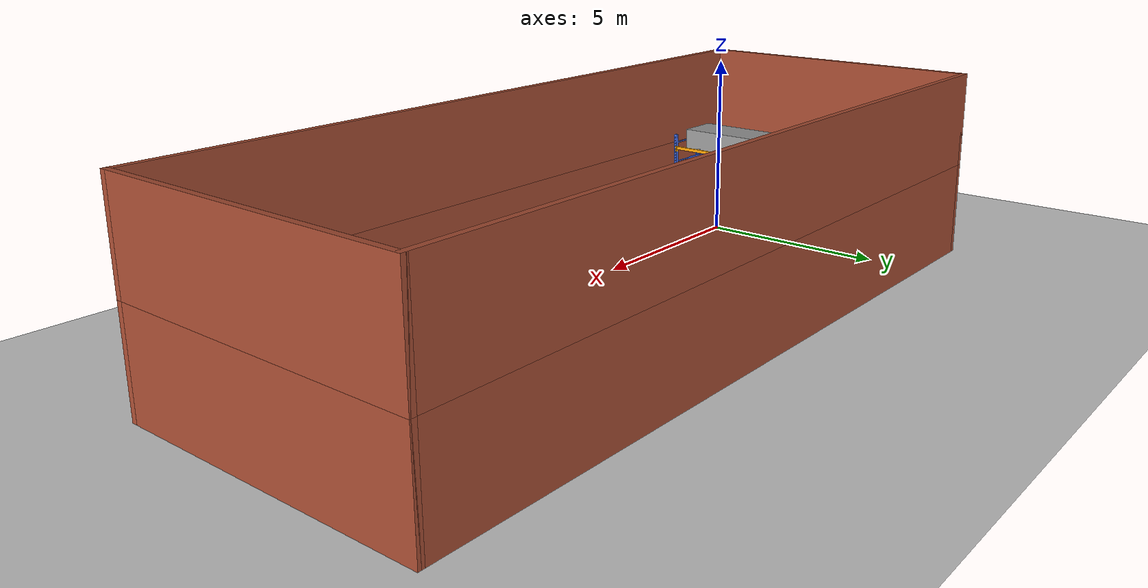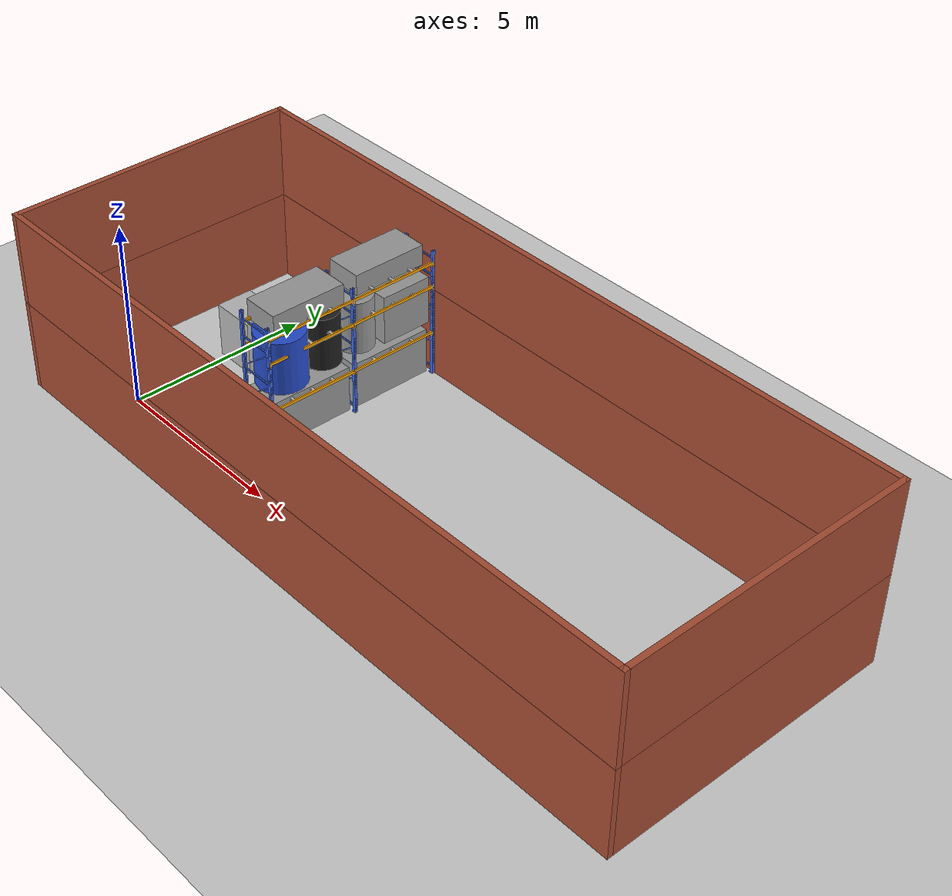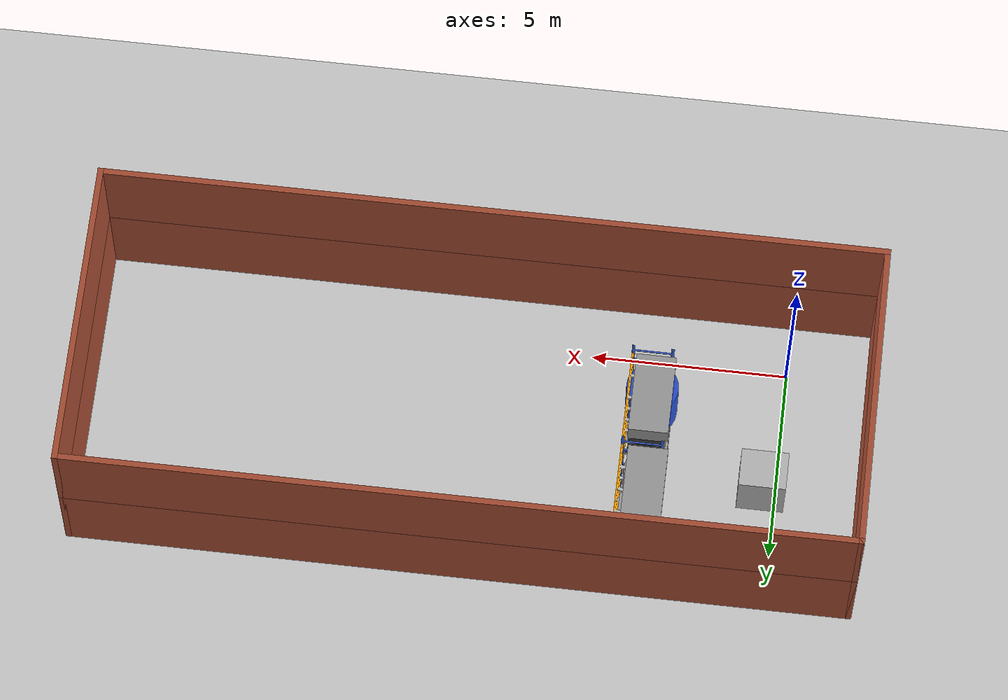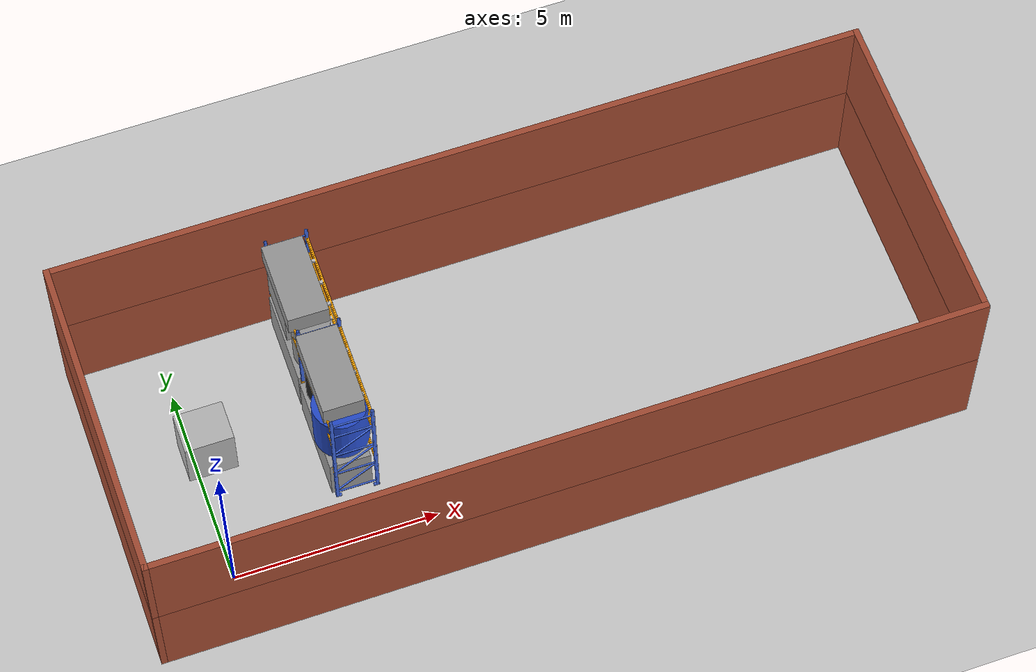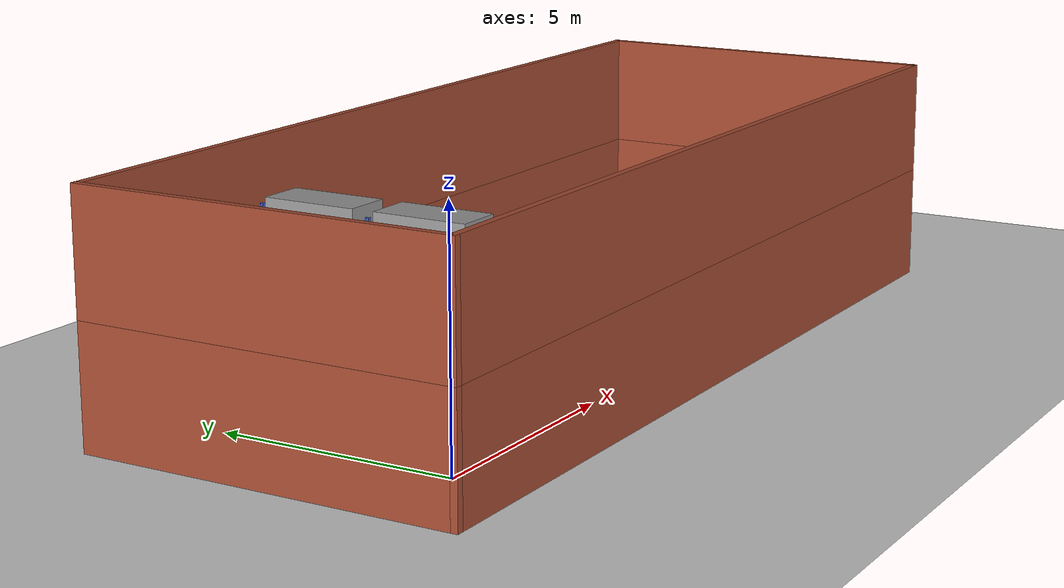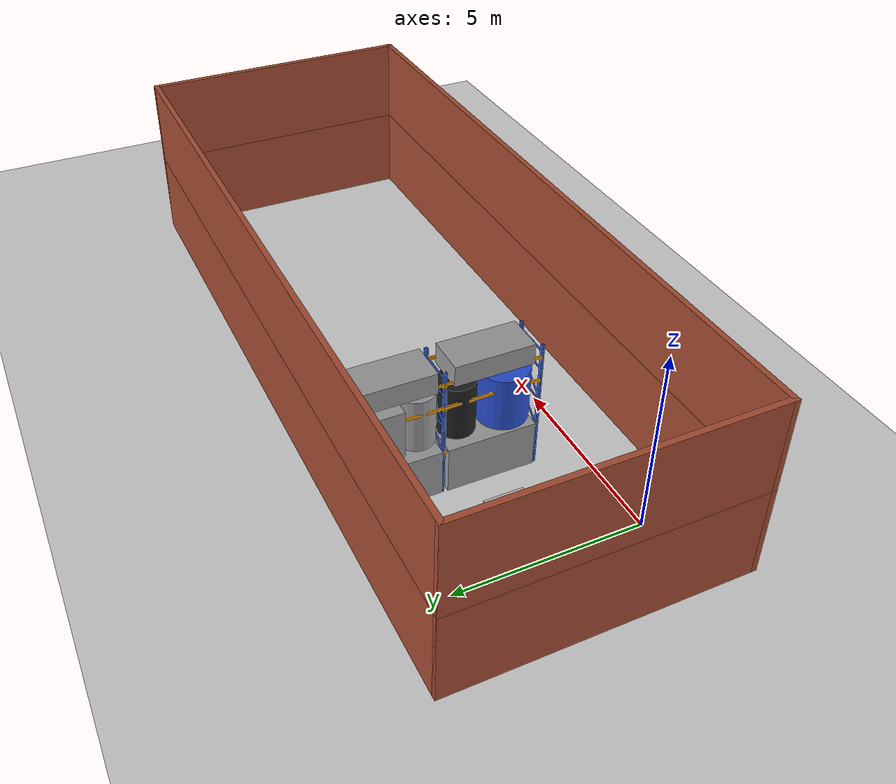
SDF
<sdf version="1.6">
 <world name="default">
  <model name="ground_plane">
   <static>1</static>
   <link name="link">
    <collision name="collision">
     <geometry><plane><normal>0 0 1</normal><size>100 100</size></plane></geometry>
     <surface><friction><ode><mu>100</mu><mu2>50</mu2></ode></friction></surface>
    </collision>
    <visual name="visual">
     <cast_shadows>0</cast_shadows>
     <geometry><plane><normal>0 0 1</normal><size>100 100</size></plane></geometry>
     <material>
      <script><uri>file://media/materials/scripts/gazebo.material</uri><name>Gazebo/Grey</name></script>
     </material>
    </visual>
   </link>
  </model>
  <model name="WarehouseSmall_1">
   <link name="Wall_0">
    <pose>0 3.925 0 0 -0 0</pose>
    <visual name="Wall_0_Visual">
     <pose>0 0 1.25 0 -0 0</pose>
     <geometry><box><size>20 0.15 2.5</size></box></geometry>
     <material>
      <script><uri>file://media/materials/scripts/gazebo.material</uri><name>Gazebo/Bricks</name></script>
      <ambient>1 1 1 1</ambient>
      <diffuse>1 1 1 1</diffuse>
      <specular>0.2 0.2 0.2 1</specular>
      <emissive>0 0 0 1</emissive>
     </material>
    </visual>
    <collision name="Wall_0_Collision">
     <pose>0 0 1.25 0 -0 0</pose>
     <geometry><box><size>20 0.15 2.5</size></box></geometry>
     <surface>
      <friction>
       <ode><mu>1</mu><mu2>1</mu2><fdir1>0 0 0</fdir1><slip1>0</slip1><slip2>0</slip2></ode>
       <torsional>
        <coefficient>1</coefficient>
        <patch_radius>0</patch_radius>
        <surface_radius>0</surface_radius>
        <use_patch_radius>1</use_patch_radius>
        <ode><slip>0</slip></ode>
       </torsional>
      </friction>
      <bounce><restitution_coefficient>0</restitution_coefficient><threshold>1e+06</threshold></bounce>
      <contact>
       <collide_without_contact>0</collide_without_contact>
       <collide_without_contact_bitmask>1</collide_without_contact_bitmask>
       <collide_bitmask>1</collide_bitmask>
       <ode>
        <soft_cfm>0</soft_cfm>
        <soft_erp>0.2</soft_erp>
        <kp>1e+13</kp>
        <kd>1</kd>
        <max_vel>0.01</max_vel>
        <min_depth>0</min_depth>
       </ode>
       <bullet>
        <split_impulse>1</split_impulse>
        <split_impulse_penetration_threshold>-0.01</split_impulse_penetration_threshold>
        <soft_cfm>0</soft_cfm>
        <soft_erp>0.2</soft_erp>
        <kp>1e+13</kp>
        <kd>1</kd>
       </bullet>
      </contact>
     </surface>
    </collision>
   </link>
   <link name="Wall_1">
    <pose>9.925 0 0 0 0 -1.5708</pose>
    <visual name="Wall_1_Visual">
     <pose>0 0 1.25 0 -0 0</pose>
     <geometry><box><size>8 0.15 2.5</size></box></geometry>
     <material>
      <script><uri>file://media/materials/scripts/gazebo.material</uri><name>Gazebo/Bricks</name></script>
      <ambient>1 1 1 1</ambient>
      <diffuse>1 1 1 1</diffuse>
      <specular>0.2 0.2 0.2 1</specular>
      <emissive>0 0 0 1</emissive>
     </material>
    </visual>
    <collision name="Wall_1_Collision">
     <pose>0 0 1.25 0 -0 0</pose>
     <geometry><box><size>8 0.15 2.5</size></box></geometry>
     <surface>
      <friction>
       <ode><mu>1</mu><mu2>1</mu2><fdir1>0 0 0</fdir1><slip1>0</slip1><slip2>0</slip2></ode>
       <torsional>
        <coefficient>1</coefficient>
        <patch_radius>0</patch_radius>
        <surface_radius>0</surface_radius>
        <use_patch_radius>1</use_patch_radius>
        <ode><slip>0</slip></ode>
       </torsional>
      </friction>
      <bounce><restitution_coefficient>0</restitution_coefficient><threshold>1e+06</threshold></bounce>
      <contact>
       <collide_without_contact>0</collide_without_contact>
       <collide_without_contact_bitmask>1</collide_without_contact_bitmask>
       <collide_bitmask>1</collide_bitmask>
       <ode>
        <soft_cfm>0</soft_cfm>
        <soft_erp>0.2</soft_erp>
        <kp>1e+13</kp>
        <kd>1</kd>
        <max_vel>0.01</max_vel>
        <min_depth>0</min_depth>
       </ode>
       <bullet>
        <split_impulse>1</split_impulse>
        <split_impulse_penetration_threshold>-0.01</split_impulse_penetration_threshold>
        <soft_cfm>0</soft_cfm>
        <soft_erp>0.2</soft_erp>
        <kp>1e+13</kp>
        <kd>1</kd>
       </bullet>
      </contact>
     </surface>
    </collision>
   </link>
   <link name="Wall_2">
    <pose>0 -3.925 0 0 -0 3.14159</pose>
    <visual name="Wall_2_Visual">
     <pose>0 0 1.25 0 -0 0</pose>
     <geometry><box><size>20 0.15 2.5</size></box></geometry>
     <material>
      <script><uri>file://media/materials/scripts/gazebo.material</uri><name>Gazebo/Bricks</name></script>
      <ambient>1 1 1 1</ambient>
      <diffuse>1 1 1 1</diffuse>
      <specular>0.2 0.2 0.2 1</specular>
      <emissive>0 0 0 1</emissive>
     </material>
    </visual>
    <collision name="Wall_2_Collision">
     <pose>0 0 1.25 0 -0 0</pose>
     <geometry><box><size>20 0.15 2.5</size></box></geometry>
     <surface>
      <friction>
       <ode><mu>1</mu><mu2>1</mu2><fdir1>0 0 0</fdir1><slip1>0</slip1><slip2>0</slip2></ode>
       <torsional>
        <coefficient>1</coefficient>
        <patch_radius>0</patch_radius>
        <surface_radius>0</surface_radius>
        <use_patch_radius>1</use_patch_radius>
        <ode><slip>0</slip></ode>
       </torsional>
      </friction>
      <bounce><restitution_coefficient>0</restitution_coefficient><threshold>1e+06</threshold></bounce>
      <contact>
       <collide_without_contact>0</collide_without_contact>
       <collide_without_contact_bitmask>1</collide_without_contact_bitmask>
       <collide_bitmask>1</collide_bitmask>
       <ode>
        <soft_cfm>0</soft_cfm>
        <soft_erp>0.2</soft_erp>
        <kp>1e+13</kp>
        <kd>1</kd>
        <max_vel>0.01</max_vel>
        <min_depth>0</min_depth>
       </ode>
       <bullet>
        <split_impulse>1</split_impulse>
        <split_impulse_penetration_threshold>-0.01</split_impulse_penetration_threshold>
        <soft_cfm>0</soft_cfm>
        <soft_erp>0.2</soft_erp>
        <kp>1e+13</kp>
        <kd>1</kd>
       </bullet>
      </contact>
     </surface>
    </collision>
   </link>
   <link name="Wall_3">
    <pose>-9.925 0 0 0 -0 1.5708</pose>
    <visual name="Wall_3_Visual">
     <pose>0 0 1.25 0 -0 0</pose>
     <geometry><box><size>8 0.15 2.5</size></box></geometry>
     <material>
      <script><uri>file://media/materials/scripts/gazebo.material</uri><name>Gazebo/Bricks</name></script>
      <ambient>1 1 1 1</ambient>
      <diffuse>1 1 1 1</diffuse>
      <specular>0.2 0.2 0.2 1</specular>
      <emissive>0 0 0 1</emissive>
     </material>
    </visual>
    <collision name="Wall_3_Collision">
     <pose>0 0 1.25 0 -0 0</pose>
     <geometry><box><size>8 0.15 2.5</size></box></geometry>
     <surface>
      <friction>
       <ode><mu>1</mu><mu2>1</mu2><fdir1>0 0 0</fdir1><slip1>0</slip1><slip2>0</slip2></ode>
       <torsional>
        <coefficient>1</coefficient>
        <patch_radius>0</patch_radius>
        <surface_radius>0</surface_radius>
        <use_patch_radius>1</use_patch_radius>
        <ode><slip>0</slip></ode>
       </torsional>
      </friction>
      <bounce><restitution_coefficient>0</restitution_coefficient><threshold>1e+06</threshold></bounce>
      <contact>
       <collide_without_contact>0</collide_without_contact>
       <collide_without_contact_bitmask>1</collide_without_contact_bitmask>
       <collide_bitmask>1</collide_bitmask>
       <ode>
        <soft_cfm>0</soft_cfm>
        <soft_erp>0.2</soft_erp>
        <kp>1e+13</kp>
        <kd>1</kd>
        <max_vel>0.01</max_vel>
        <min_depth>0</min_depth>
       </ode>
       <bullet>
        <split_impulse>1</split_impulse>
        <split_impulse_penetration_threshold>-0.01</split_impulse_penetration_threshold>
        <soft_cfm>0</soft_cfm>
        <soft_erp>0.2</soft_erp>
        <kp>1e+13</kp>
        <kd>1</kd>
       </bullet>
      </contact>
     </surface>
    </collision>
   </link>
   <link name="Wall_5">
    <pose>0 3.925 2.5 0 -0 0</pose>
    <visual name="Wall_5_Visual">
     <pose>0 0 1.25 0 -0 0</pose>
     <geometry><box><size>20 0.15 2.5</size></box></geometry>
     <material>
      <script><uri>file://media/materials/scripts/gazebo.material</uri><name>Gazebo/Bricks</name></script>
      <ambient>1 1 1 1</ambient>
      <diffuse>1 1 1 1</diffuse>
      <specular>0.2 0.2 0.2 1</specular>
      <emissive>0 0 0 1</emissive>
     </material>
    </visual>
    <collision name="Wall_5_Collision">
     <pose>0 0 1.25 0 -0 0</pose>
     <geometry><box><size>20 0.15 2.5</size></box></geometry>
     <surface>
      <friction>
       <ode><mu>1</mu><mu2>1</mu2><fdir1>0 0 0</fdir1><slip1>0</slip1><slip2>0</slip2></ode>
       <torsional>
        <coefficient>1</coefficient>
        <patch_radius>0</patch_radius>
        <surface_radius>0</surface_radius>
        <use_patch_radius>1</use_patch_radius>
        <ode><slip>0</slip></ode>
       </torsional>
      </friction>
      <bounce><restitution_coefficient>0</restitution_coefficient><threshold>1e+06</threshold></bounce>
      <contact>
       <collide_without_contact>0</collide_without_contact>
       <collide_without_contact_bitmask>1</collide_without_contact_bitmask>
       <collide_bitmask>1</collide_bitmask>
       <ode>
        <soft_cfm>0</soft_cfm>
        <soft_erp>0.2</soft_erp>
        <kp>1e+13</kp>
        <kd>1</kd>
        <max_vel>0.01</max_vel>
        <min_depth>0</min_depth>
       </ode>
       <bullet>
        <split_impulse>1</split_impulse>
        <split_impulse_penetration_threshold>-0.01</split_impulse_penetration_threshold>
        <soft_cfm>0</soft_cfm>
        <soft_erp>0.2</soft_erp>
        <kp>1e+13</kp>
        <kd>1</kd>
       </bullet>
      </contact>
     </surface>
    </collision>
   </link>
   <link name="Wall_6">
    <pose>9.925 0 2.5 0 0 -1.5708</pose>
    <visual name="Wall_6_Visual">
     <pose>0 0 1.25 0 -0 0</pose>
     <geometry><box><size>8 0.15 2.5</size></box></geometry>
     <material>
      <script><uri>file://media/materials/scripts/gazebo.material</uri><name>Gazebo/Bricks</name></script>
      <ambient>1 1 1 1</ambient>
      <diffuse>1 1 1 1</diffuse>
      <specular>0.2 0.2 0.2 1</specular>
      <emissive>0 0 0 1</emissive>
     </material>
    </visual>
    <collision name="Wall_6_Collision">
     <pose>0 0 1.25 0 -0 0</pose>
     <geometry><box><size>8 0.15 2.5</size></box></geometry>
     <surface>
      <friction>
       <ode><mu>1</mu><mu2>1</mu2><fdir1>0 0 0</fdir1><slip1>0</slip1><slip2>0</slip2></ode>
       <torsional>
        <coefficient>1</coefficient>
        <patch_radius>0</patch_radius>
        <surface_radius>0</surface_radius>
        <use_patch_radius>1</use_patch_radius>
        <ode><slip>0</slip></ode>
       </torsional>
      </friction>
      <bounce><restitution_coefficient>0</restitution_coefficient><threshold>1e+06</threshold></bounce>
      <contact>
       <collide_without_contact>0</collide_without_contact>
       <collide_without_contact_bitmask>1</collide_without_contact_bitmask>
       <collide_bitmask>1</collide_bitmask>
       <ode>
        <soft_cfm>0</soft_cfm>
        <soft_erp>0.2</soft_erp>
        <kp>1e+13</kp>
        <kd>1</kd>
        <max_vel>0.01</max_vel>
        <min_depth>0</min_depth>
       </ode>
       <bullet>
        <split_impulse>1</split_impulse>
        <split_impulse_penetration_threshold>-0.01</split_impulse_penetration_threshold>
        <soft_cfm>0</soft_cfm>
        <soft_erp>0.2</soft_erp>
        <kp>1e+13</kp>
        <kd>1</kd>
       </bullet>
      </contact>
     </surface>
    </collision>
   </link>
   <link name="Wall_7">
    <pose>0 -3.925 2.5 0 -0 3.14159</pose>
    <visual name="Wall_7_Visual">
     <pose>0 0 1.25 0 -0 0</pose>
     <geometry><box><size>20 0.15 2.5</size></box></geometry>
     <material>
      <script><uri>file://media/materials/scripts/gazebo.material</uri><name>Gazebo/Bricks</name></script>
      <ambient>1 1 1 1</ambient>
      <diffuse>1 1 1 1</diffuse>
      <specular>0.2 0.2 0.2 1</specular>
      <emissive>0 0 0 1</emissive>
     </material>
    </visual>
    <collision name="Wall_7_Collision">
     <pose>0 0 1.25 0 -0 0</pose>
     <geometry><box><size>20 0.15 2.5</size></box></geometry>
     <surface>
      <friction>
       <ode><mu>1</mu><mu2>1</mu2><fdir1>0 0 0</fdir1><slip1>0</slip1><slip2>0</slip2></ode>
       <torsional>
        <coefficient>1</coefficient>
        <patch_radius>0</patch_radius>
        <surface_radius>0</surface_radius>
        <use_patch_radius>1</use_patch_radius>
        <ode><slip>0</slip></ode>
       </torsional>
      </friction>
      <bounce><restitution_coefficient>0</restitution_coefficient><threshold>1e+06</threshold></bounce>
      <contact>
       <collide_without_contact>0</collide_without_contact>
       <collide_without_contact_bitmask>1</collide_without_contact_bitmask>
       <collide_bitmask>1</collide_bitmask>
       <ode>
        <soft_cfm>0</soft_cfm>
        <soft_erp>0.2</soft_erp>
        <kp>1e+13</kp>
        <kd>1</kd>
        <max_vel>0.01</max_vel>
        <min_depth>0</min_depth>
       </ode>
       <bullet>
        <split_impulse>1</split_impulse>
        <split_impulse_penetration_threshold>-0.01</split_impulse_penetration_threshold>
        <soft_cfm>0</soft_cfm>
        <soft_erp>0.2</soft_erp>
        <kp>1e+13</kp>
        <kd>1</kd>
       </bullet>
      </contact>
     </surface>
    </collision>
   </link>
   <link name="Wall_8">
    <pose>-9.925 0 2.5 0 -0 1.5708</pose>
    <visual name="Wall_8_Visual">
     <pose>0 0 1.25 0 -0 0</pose>
     <geometry><box><size>8 0.15 2.5</size></box></geometry>
     <material>
      <script><uri>file://media/materials/scripts/gazebo.material</uri><name>Gazebo/Bricks</name></script>
      <ambient>1 1 1 1</ambient>
      <diffuse>1 1 1 1</diffuse>
      <specular>0.2 0.2 0.2 1</specular>
      <emissive>0 0 0 1</emissive>
     </material>
    </visual>
    <collision name="Wall_8_Collision">
     <pose>0 0 1.25 0 -0 0</pose>
     <geometry><box><size>8 0.15 2.5</size></box></geometry>
     <surface>
      <friction>
       <ode><mu>1</mu><mu2>1</mu2><fdir1>0 0 0</fdir1><slip1>0</slip1><slip2>0</slip2></ode>
       <torsional>
        <coefficient>1</coefficient>
        <patch_radius>0</patch_radius>
        <surface_radius>0</surface_radius>
        <use_patch_radius>1</use_patch_radius>
        <ode><slip>0</slip></ode>
       </torsional>
      </friction>
      <bounce><restitution_coefficient>0</restitution_coefficient><threshold>1e+06</threshold></bounce>
      <contact>
       <collide_without_contact>0</collide_without_contact>
       <collide_without_contact_bitmask>1</collide_without_contact_bitmask>
       <collide_bitmask>1</collide_bitmask>
       <ode>
        <soft_cfm>0</soft_cfm>
        <soft_erp>0.2</soft_erp>
        <kp>1e+13</kp>
        <kd>1</kd>
        <max_vel>0.01</max_vel>
        <min_depth>0</min_depth>
       </ode>
       <bullet>
        <split_impulse>1</split_impulse>
        <split_impulse_penetration_threshold>-0.01</split_impulse_penetration_threshold>
        <soft_cfm>0</soft_cfm>
        <soft_erp>0.2</soft_erp>
        <kp>1e+13</kp>
        <kd>1</kd>
       </bullet>
      </contact>
     </surface>
    </collision>
   </link>
   <static>1</static>
   <pose>7.78461 2.46373 0 0 -0 0</pose>
  </model>
  <model name="Full_shelf_1">
   <link name="link">
    <gravity>0</gravity>
    <inertial>
     <mass>1</mass>
     <inertia><ixx>1</ixx><ixy>0</ixy><ixz>0</ixz><iyy>1</iyy><iyz>0</iyz><izz>1</izz></inertia>
    </inertial>
    <visual name="visual">
     <geometry><mesh><uri>model://shelves_high/meshes/shelves_high.dae</uri><scale>1 1 1</scale></mesh></geometry>
     <material><shader type="vertex"><normal_map>__default__</normal_map></shader></material>
    </visual>
    <collision name="collision">
     <geometry>
      <mesh>
       <uri>/home/kosmastsk/.gazebo/models/shelves_high/meshes/shelves_high_collision.dae</uri>
       <scale>1 1 1</scale>
      </mesh>
     </geometry>
     <surface>
      <friction>
       <ode><mu>1</mu><mu2>1</mu2><fdir1>0 0 0</fdir1><slip1>0</slip1><slip2>0</slip2></ode>
       <torsional>
        <coefficient>1</coefficient>
        <patch_radius>0</patch_radius>
        <surface_radius>0</surface_radius>
        <use_patch_radius>1</use_patch_radius>
        <ode><slip>0</slip></ode>
       </torsional>
      </friction>
      <bounce><restitution_coefficient>0</restitution_coefficient><threshold>1e+06</threshold></bounce>
      <contact>
       <collide_without_contact>0</collide_without_contact>
       <collide_without_contact_bitmask>1</collide_without_contact_bitmask>
       <collide_bitmask>1</collide_bitmask>
       <ode>
        <soft_cfm>0</soft_cfm>
        <soft_erp>0.2</soft_erp>
        <kp>1e+13</kp>
        <kd>1</kd>
        <max_vel>0.01</max_vel>
        <min_depth>0</min_depth>
       </ode>
       <bullet>
        <split_impulse>1</split_impulse>
        <split_impulse_penetration_threshold>-0.01</split_impulse_penetration_threshold>
        <soft_cfm>0</soft_cfm>
        <soft_erp>0.2</soft_erp>
        <kp>1e+13</kp>
        <kd>1</kd>
       </bullet>
      </contact>
     </surface>
    </collision>
   </link>
   <link name="link_0">
    <pose>-1.21806 -0.607758 0.705407 0 -0 0</pose>
    <inertial>
     <mass>3.0149</mass>
     <inertia><ixx>0.669682</ixx><ixy>0</ixy><ixz>0</ixz><iyy>1.78963</iyy><iyz>0</iyz><izz>1.62244</izz></inertia>
    </inertial>
    <gravity>0</gravity>
    <visual name="visual">
     <geometry><box><size>2.33617 1 1.29054</size></box></geometry>
     <material>
      <lighting>1</lighting>
      <script><uri>file://media/materials/scripts/gazebo.material</uri><name>Gazebo/Grey</name></script>
      <ambient>0.3 0.3 0.3 1</ambient>
      <diffuse>0.7 0.7 0.7 1</diffuse>
      <specular>0.01 0.01 0.01 1</specular>
      <emissive>0 0 0 1</emissive>
      <shader type="vertex"><normal_map>__default__</normal_map></shader>
     </material>
    </visual>
    <collision name="collision">
     <geometry><box><size>2.33617 1 1.29054</size></box></geometry>
     <surface>
      <friction>
       <ode><mu>1</mu><mu2>1</mu2><fdir1>0 0 0</fdir1><slip1>0</slip1><slip2>0</slip2></ode>
       <torsional>
        <coefficient>1</coefficient>
        <patch_radius>0</patch_radius>
        <surface_radius>0</surface_radius>
        <use_patch_radius>1</use_patch_radius>
        <ode><slip>0</slip></ode>
       </torsional>
      </friction>
      <bounce><restitution_coefficient>0</restitution_coefficient><threshold>1e+06</threshold></bounce>
      <contact>
       <collide_without_contact>0</collide_without_contact>
       <collide_without_contact_bitmask>1</collide_without_contact_bitmask>
       <collide_bitmask>1</collide_bitmask>
       <ode>
        <soft_cfm>0</soft_cfm>
        <soft_erp>0.2</soft_erp>
        <kp>1e+13</kp>
        <kd>1</kd>
        <max_vel>0.01</max_vel>
        <min_depth>0</min_depth>
       </ode>
       <bullet>
        <split_impulse>1</split_impulse>
        <split_impulse_penetration_threshold>-0.01</split_impulse_penetration_threshold>
        <soft_cfm>0</soft_cfm>
        <soft_erp>0.2</soft_erp>
        <kp>1e+13</kp>
        <kd>1</kd>
       </bullet>
      </contact>
     </surface>
    </collision>
   </link>
   <link name="link_0_clone">
    <pose>1.26342 -0.615799 0.705407 0 -0 0</pose>
    <inertial>
     <mass>3.0149</mass>
     <inertia><ixx>0.669682</ixx><ixy>0</ixy><ixz>0</ixz><iyy>1.78963</iyy><iyz>0</iyz><izz>1.62244</izz></inertia>
    </inertial>
    <gravity>0</gravity>
    <visual name="visual">
     <geometry><box><size>2.33617 1 1.29054</size></box></geometry>
     <material>
      <lighting>1</lighting>
      <script><uri>file://media/materials/scripts/gazebo.material</uri><name>Gazebo/Grey</name></script>
      <ambient>0.3 0.3 0.3 1</ambient>
      <diffuse>0.7 0.7 0.7 1</diffuse>
      <specular>0.01 0.01 0.01 1</specular>
      <emissive>0 0 0 1</emissive>
      <shader type="vertex"><normal_map>__default__</normal_map></shader>
     </material>
    </visual>
    <collision name="collision">
     <geometry><box><size>2.33617 1 1.29054</size></box></geometry>
     <surface>
      <friction>
       <ode><mu>1</mu><mu2>1</mu2><fdir1>0 0 0</fdir1><slip1>0</slip1><slip2>0</slip2></ode>
       <torsional>
        <coefficient>1</coefficient>
        <patch_radius>0</patch_radius>
        <surface_radius>0</surface_radius>
        <use_patch_radius>1</use_patch_radius>
        <ode><slip>0</slip></ode>
       </torsional>
      </friction>
      <bounce><restitution_coefficient>0</restitution_coefficient><threshold>1e+06</threshold></bounce>
      <contact>
       <collide_without_contact>0</collide_without_contact>
       <collide_without_contact_bitmask>1</collide_without_contact_bitmask>
       <collide_bitmask>1</collide_bitmask>
       <ode>
        <soft_cfm>0</soft_cfm>
        <soft_erp>0.2</soft_erp>
        <kp>1e+13</kp>
        <kd>1</kd>
        <max_vel>0.01</max_vel>
        <min_depth>0</min_depth>
       </ode>
       <bullet>
        <split_impulse>1</split_impulse>
        <split_impulse_penetration_threshold>-0.01</split_impulse_penetration_threshold>
        <soft_cfm>0</soft_cfm>
        <soft_erp>0.2</soft_erp>
        <kp>1e+13</kp>
        <kd>1</kd>
       </bullet>
      </contact>
     </surface>
    </collision>
   </link>
   <link name="link_1">
    <pose>-1.72249 -0.574926 2.23564 0 -0 0</pose>
    <inertial>
     <mass>1.9112</mass>
     <inertia>
      <ixx>0.442719</ixx>
      <ixy>0</ixy>
      <ixz>0</ixz>
      <iyy>0.610326</iyy>
      <iyz>0</iyz>
      <izz>0.48614</izz>
     </inertia>
    </inertial>
    <gravity>0</gravity>
    <visual name="visual">
     <geometry><box><size>1.43261 1 1.33407</size></box></geometry>
     <material>
      <lighting>1</lighting>
      <script><uri>file://media/materials/scripts/gazebo.material</uri><name>Gazebo/Grey</name></script>
      <ambient>0.3 0.3 0.3 1</ambient>
      <diffuse>0.7 0.7 0.7 1</diffuse>
      <specular>0.01 0.01 0.01 1</specular>
      <emissive>0 0 0 1</emissive>
      <shader type="vertex"><normal_map>__default__</normal_map></shader>
     </material>
    </visual>
    <collision name="collision">
     <geometry><box><size>1.43261 1 1.33407</size></box></geometry>
     <surface>
      <friction>
       <ode><mu>1</mu><mu2>1</mu2><fdir1>0 0 0</fdir1><slip1>0</slip1><slip2>0</slip2></ode>
       <torsional>
        <coefficient>1</coefficient>
        <patch_radius>0</patch_radius>
        <surface_radius>0</surface_radius>
        <use_patch_radius>1</use_patch_radius>
        <ode><slip>0</slip></ode>
       </torsional>
      </friction>
      <bounce><restitution_coefficient>0</restitution_coefficient><threshold>1e+06</threshold></bounce>
      <contact>
       <collide_without_contact>0</collide_without_contact>
       <collide_without_contact_bitmask>1</collide_without_contact_bitmask>
       <collide_bitmask>1</collide_bitmask>
       <ode>
        <soft_cfm>0</soft_cfm>
        <soft_erp>0.2</soft_erp>
        <kp>1e+13</kp>
        <kd>1</kd>
        <max_vel>0.01</max_vel>
        <min_depth>0</min_depth>
       </ode>
       <bullet>
        <split_impulse>1</split_impulse>
        <split_impulse_penetration_threshold>-0.01</split_impulse_penetration_threshold>
        <soft_cfm>0</soft_cfm>
        <soft_erp>0.2</soft_erp>
        <kp>1e+13</kp>
        <kd>1</kd>
       </bullet>
      </contact>
     </surface>
    </collision>
   </link>
   <link name="link_2">
    <pose>-0.517546 -0.576274 2.28472 0 -0 0</pose>
    <inertial>
     <mass>1.31196</mass>
     <inertia>
      <ixx>0.306625</ixx>
      <ixy>0</ixy>
      <ixz>0</ixz>
      <iyy>0.306625</iyy>
      <iyz>0</iyz>
      <izz>0.147406</izz>
     </inertia>
    </inertial>
    <gravity>0</gravity>
    <visual name="visual">
     <geometry><cylinder><radius>0.474045</radius><length>1.45961</length></cylinder></geometry>
     <material>
      <lighting>1</lighting>
      <script><uri>file://media/materials/scripts/gazebo.material</uri><name>Gazebo/Grey</name></script>
      <ambient>0.3 0.3 0.3 1</ambient>
      <diffuse>0.7 0.7 0.7 1</diffuse>
      <specular>0.01 0.01 0.01 1</specular>
      <emissive>0 0 0 1</emissive>
      <shader type="vertex"><normal_map>__default__</normal_map></shader>
     </material>
    </visual>
    <collision name="collision">
     <geometry><cylinder><radius>0.474045</radius><length>1.45961</length></cylinder></geometry>
     <surface>
      <friction>
       <ode><mu>1</mu><mu2>1</mu2><fdir1>0 0 0</fdir1><slip1>0</slip1><slip2>0</slip2></ode>
       <torsional>
        <coefficient>1</coefficient>
        <patch_radius>0</patch_radius>
        <surface_radius>0</surface_radius>
        <use_patch_radius>1</use_patch_radius>
        <ode><slip>0</slip></ode>
       </torsional>
      </friction>
      <bounce><restitution_coefficient>0</restitution_coefficient><threshold>1e+06</threshold></bounce>
      <contact>
       <collide_without_contact>0</collide_without_contact>
       <collide_without_contact_bitmask>1</collide_without_contact_bitmask>
       <collide_bitmask>1</collide_bitmask>
       <ode>
        <soft_cfm>0</soft_cfm>
        <soft_erp>0.2</soft_erp>
        <kp>1e+13</kp>
        <kd>1</kd>
        <max_vel>0.01</max_vel>
        <min_depth>0</min_depth>
       </ode>
       <bullet>
        <split_impulse>1</split_impulse>
        <split_impulse_penetration_threshold>-0.01</split_impulse_penetration_threshold>
        <soft_cfm>0</soft_cfm>
        <soft_erp>0.2</soft_erp>
        <kp>1e+13</kp>
        <kd>1</kd>
       </bullet>
      </contact>
     </surface>
    </collision>
   </link>
   <link name="link_2_clone">
    <pose>0.526936 -0.581711 2.28472 0 -0 0</pose>
    <inertial>
     <mass>1.31196</mass>
     <inertia>
      <ixx>0.306625</ixx>
      <ixy>0</ixy>
      <ixz>0</ixz>
      <iyy>0.306625</iyy>
      <iyz>0</iyz>
      <izz>0.147406</izz>
     </inertia>
    </inertial>
    <gravity>0</gravity>
    <visual name="visual">
     <geometry><cylinder><radius>0.474045</radius><length>1.45961</length></cylinder></geometry>
     <material>
      <lighting>1</lighting>
      <script><uri>file://media/materials/scripts/gazebo.material</uri><name>Gazebo/Black</name></script>
      <ambient>0.3 0.3 0.3 1</ambient>
      <diffuse>0.7 0.7 0.7 1</diffuse>
      <specular>0.01 0.01 0.01 1</specular>
      <emissive>0 0 0 1</emissive>
      <shader type="vertex"><normal_map>__default__</normal_map></shader>
     </material>
    </visual>
    <collision name="collision">
     <geometry><cylinder><radius>0.474045</radius><length>1.45961</length></cylinder></geometry>
     <surface>
      <friction>
       <ode><mu>1</mu><mu2>1</mu2><fdir1>0 0 0</fdir1><slip1>0</slip1><slip2>0</slip2></ode>
       <torsional>
        <coefficient>1</coefficient>
        <patch_radius>0</patch_radius>
        <surface_radius>0</surface_radius>
        <use_patch_radius>1</use_patch_radius>
        <ode><slip>0</slip></ode>
       </torsional>
      </friction>
      <bounce><restitution_coefficient>0</restitution_coefficient><threshold>1e+06</threshold></bounce>
      <contact>
       <collide_without_contact>0</collide_without_contact>
       <collide_without_contact_bitmask>1</collide_without_contact_bitmask>
       <collide_bitmask>1</collide_bitmask>
       <ode>
        <soft_cfm>0</soft_cfm>
        <soft_erp>0.2</soft_erp>
        <kp>1e+13</kp>
        <kd>1</kd>
        <max_vel>0.01</max_vel>
        <min_depth>0</min_depth>
       </ode>
       <bullet>
        <split_impulse>1</split_impulse>
        <split_impulse_penetration_threshold>-0.01</split_impulse_penetration_threshold>
        <soft_cfm>0</soft_cfm>
        <soft_erp>0.2</soft_erp>
        <kp>1e+13</kp>
        <kd>1</kd>
       </bullet>
      </contact>
     </surface>
    </collision>
   </link>
   <link name="link_2_clone_0">
    <pose>1.75429 -0.591645 2.28472 0 -0 0</pose>
    <inertial>
     <mass>2.53501</mass>
     <inertia>
      <ixx>0.725231</ixx>
      <ixy>0</ixy>
      <ixz>0</ixz>
      <iyy>0.725231</iyy>
      <iyz>0</iyz>
      <izz>0.550343</izz>
     </inertia>
    </inertial>
    <gravity>0</gravity>
    <visual name="visual">
     <geometry><cylinder><radius>0.658947</radius><length>1.45961</length></cylinder></geometry>
     <material>
      <lighting>1</lighting>
      <script><uri>file://media/materials/scripts/gazebo.material</uri><name>Gazebo/Blue</name></script>
      <ambient>0.3 0.3 0.3 1</ambient>
      <diffuse>0.7 0.7 0.7 1</diffuse>
      <specular>0.01 0.01 0.01 1</specular>
      <emissive>0 0 0 1</emissive>
      <shader type="vertex"><normal_map>__default__</normal_map></shader>
     </material>
    </visual>
    <collision name="collision">
     <geometry><cylinder><radius>0.658947</radius><length>1.45961</length></cylinder></geometry>
     <surface>
      <friction>
       <ode><mu>1</mu><mu2>1</mu2><fdir1>0 0 0</fdir1><slip1>0</slip1><slip2>0</slip2></ode>
       <torsional>
        <coefficient>1</coefficient>
        <patch_radius>0</patch_radius>
        <surface_radius>0</surface_radius>
        <use_patch_radius>1</use_patch_radius>
        <ode><slip>0</slip></ode>
       </torsional>
      </friction>
      <bounce><restitution_coefficient>0</restitution_coefficient><threshold>1e+06</threshold></bounce>
      <contact>
       <collide_without_contact>0</collide_without_contact>
       <collide_without_contact_bitmask>1</collide_without_contact_bitmask>
       <collide_bitmask>1</collide_bitmask>
       <ode>
        <soft_cfm>0</soft_cfm>
        <soft_erp>0.2</soft_erp>
        <kp>1e+13</kp>
        <kd>1</kd>
        <max_vel>0.01</max_vel>
        <min_depth>0</min_depth>
       </ode>
       <bullet>
        <split_impulse>1</split_impulse>
        <split_impulse_penetration_threshold>-0.01</split_impulse_penetration_threshold>
        <soft_cfm>0</soft_cfm>
        <soft_erp>0.2</soft_erp>
        <kp>1e+13</kp>
        <kd>1</kd>
       </bullet>
      </contact>
     </surface>
    </collision>
   </link>
   <link name="link_3">
    <pose>-1.28062 -0.665513 3.55602 0 -0 0</pose>
    <inertial>
     <mass>1.1657</mass>
     <inertia>
      <ixx>0.127836</ixx>
      <ixy>0</ixy>
      <ixz>0</ixz>
      <iyy>0.448459</iyy>
      <iyz>0</iyz>
      <izz>0.514907</izz>
     </inertia>
    </inertial>
    <gravity>0</gravity>
    <visual name="visual">
     <geometry><box><size>2.07377 1 0.562114</size></box></geometry>
     <material>
      <lighting>1</lighting>
      <script><uri>file://media/materials/scripts/gazebo.material</uri><name>Gazebo/Grey</name></script>
      <ambient>0.3 0.3 0.3 1</ambient>
      <diffuse>0.7 0.7 0.7 1</diffuse>
      <specular>0.01 0.01 0.01 1</specular>
      <emissive>0 0 0 1</emissive>
      <shader type="vertex"><normal_map>__default__</normal_map></shader>
     </material>
    </visual>
    <collision name="collision">
     <geometry><box><size>2.07377 1 0.562114</size></box></geometry>
     <surface>
      <friction>
       <ode><mu>1</mu><mu2>1</mu2><fdir1>0 0 0</fdir1><slip1>0</slip1><slip2>0</slip2></ode>
       <torsional>
        <coefficient>1</coefficient>
        <patch_radius>0</patch_radius>
        <surface_radius>0</surface_radius>
        <use_patch_radius>1</use_patch_radius>
        <ode><slip>0</slip></ode>
       </torsional>
      </friction>
      <bounce><restitution_coefficient>0</restitution_coefficient><threshold>1e+06</threshold></bounce>
      <contact>
       <collide_without_contact>0</collide_without_contact>
       <collide_without_contact_bitmask>1</collide_without_contact_bitmask>
       <collide_bitmask>1</collide_bitmask>
       <ode>
        <soft_cfm>0</soft_cfm>
        <soft_erp>0.2</soft_erp>
        <kp>1e+13</kp>
        <kd>1</kd>
        <max_vel>0.01</max_vel>
        <min_depth>0</min_depth>
       </ode>
       <bullet>
        <split_impulse>1</split_impulse>
        <split_impulse_penetration_threshold>-0.01</split_impulse_penetration_threshold>
        <soft_cfm>0</soft_cfm>
        <soft_erp>0.2</soft_erp>
        <kp>1e+13</kp>
        <kd>1</kd>
       </bullet>
      </contact>
     </surface>
    </collision>
   </link>
   <link name="link_3_clone">
    <pose>1.22598 -0.613311 3.54121 0 -0 0</pose>
    <inertial>
     <mass>1.1657</mass>
     <inertia>
      <ixx>0.127836</ixx>
      <ixy>0</ixy>
      <ixz>0</ixz>
      <iyy>0.448459</iyy>
      <iyz>0</iyz>
      <izz>0.514907</izz>
     </inertia>
    </inertial>
    <gravity>0</gravity>
    <visual name="visual">
     <geometry><box><size>2.07377 1 0.562114</size></box></geometry>
     <material>
      <lighting>1</lighting>
      <script><uri>file://media/materials/scripts/gazebo.material</uri><name>Gazebo/Grey</name></script>
      <ambient>0.3 0.3 0.3 1</ambient>
      <diffuse>0.7 0.7 0.7 1</diffuse>
      <specular>0.01 0.01 0.01 1</specular>
      <emissive>0 0 0 1</emissive>
      <shader type="vertex"><normal_map>__default__</normal_map></shader>
     </material>
    </visual>
    <collision name="collision">
     <geometry><box><size>2.07377 1 0.562114</size></box></geometry>
     <surface>
      <friction>
       <ode><mu>1</mu><mu2>1</mu2><fdir1>0 0 0</fdir1><slip1>0</slip1><slip2>0</slip2></ode>
       <torsional>
        <coefficient>1</coefficient>
        <patch_radius>0</patch_radius>
        <surface_radius>0</surface_radius>
        <use_patch_radius>1</use_patch_radius>
        <ode><slip>0</slip></ode>
       </torsional>
      </friction>
      <bounce><restitution_coefficient>0</restitution_coefficient><threshold>1e+06</threshold></bounce>
      <contact>
       <collide_without_contact>0</collide_without_contact>
       <collide_without_contact_bitmask>1</collide_without_contact_bitmask>
       <collide_bitmask>1</collide_bitmask>
       <ode>
        <soft_cfm>0</soft_cfm>
        <soft_erp>0.2</soft_erp>
        <kp>1e+13</kp>
        <kd>1</kd>
        <max_vel>0.01</max_vel>
        <min_depth>0</min_depth>
       </ode>
       <bullet>
        <split_impulse>1</split_impulse>
        <split_impulse_penetration_threshold>-0.01</split_impulse_penetration_threshold>
        <soft_cfm>0</soft_cfm>
        <soft_erp>0.2</soft_erp>
        <kp>1e+13</kp>
        <kd>1</kd>
       </bullet>
      </contact>
     </surface>
    </collision>
   </link>
   <static>1</static>
   <pose>3.95078 3.75061 0 0 0 -1.57572</pose>
  </model>
  <model name="Big box">
   <pose>0.354879 3.25143 0.749497 0 -0.00083 -1e-06</pose>
   <static>0</static>
   <link name="link">
    <inertial>
     <mass>40</mass>
     <inertia><ixx>1</ixx><ixy>0</ixy><ixz>0</ixz><iyy>1</iyy><iyz>0</iyz><izz>1</izz></inertia>
    </inertial>
    <collision name="collision">
     <geometry><box><size>1.2 0.8 1.5</size></box></geometry>
     <surface><contact><ode><max_vel>0.1</max_vel><min_depth>0.001</min_depth></ode></contact></surface>
    </collision>
    <visual name="visual">
     <geometry><mesh><uri>model://big_box/meshes/big_box.dae</uri><scale>1 1 1</scale></mesh></geometry>
    </visual>
   </link>
  </model>
 </world>
</sdf>
